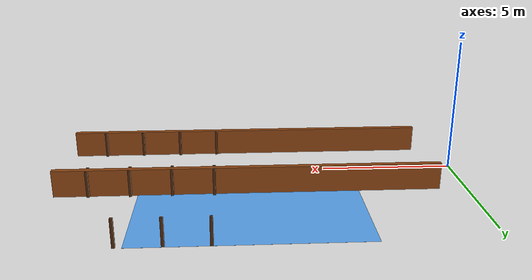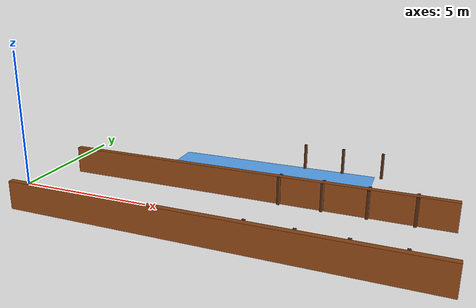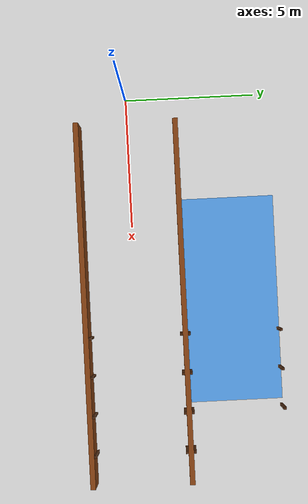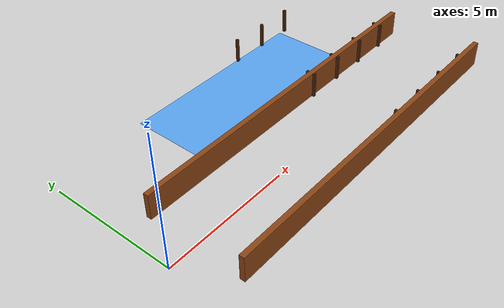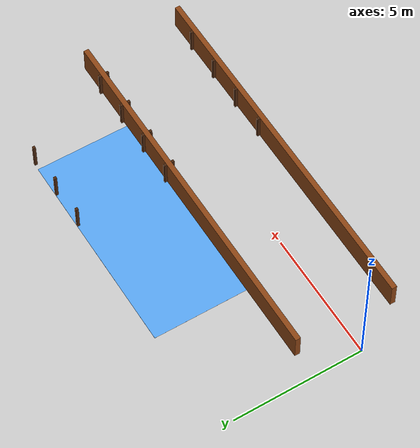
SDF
<sdf version="1.6">
 <world name="terrain_world">
  <model name="lane_wall_0">
   <static>true</static>
   <pose>8.0000 -1.9000 0.5000 0.00000 0.00000 0.00000</pose>
   <link name="link">
    <collision name="col"><geometry><box><size>14.0000 0.2000 1.0000</size></box></geometry></collision>
    <visual name="vis">
     <geometry><box><size>14.0000 0.2000 1.0000</size></box></geometry>
     <material><ambient>0.55 0.27 0.08 1</ambient><diffuse>0.55 0.27 0.08 1</diffuse></material>
    </visual>
   </link>
  </model>
  <model name="lane_wall_1">
   <static>true</static>
   <pose>8.0000 1.9000 0.5000 0.00000 0.00000 0.00000</pose>
   <link name="link">
    <collision name="col"><geometry><box><size>14.0000 0.2000 1.0000</size></box></geometry></collision>
    <visual name="vis">
     <geometry><box><size>14.0000 0.2000 1.0000</size></box></geometry>
     <material><ambient>0.55 0.27 0.08 1</ambient><diffuse>0.55 0.27 0.08 1</diffuse></material>
    </visual>
   </link>
  </model>
  <model name="lane0_rib_l5">
   <static>true</static>
   <pose>9.2500 1.7500 0.5000 0.00000 0.00000 0.00000</pose>
   <link name="link">
    <collision name="col"><geometry><box><size>0.1000 0.1000 1.0000</size></box></geometry></collision>
    <visual name="vis">
     <geometry><box><size>0.1000 0.1000 1.0000</size></box></geometry>
     <material><ambient>0.30 0.15 0.05 1</ambient><diffuse>0.30 0.15 0.05 1</diffuse></material>
    </visual>
   </link>
  </model>
  <model name="lane0_rib_l6">
   <static>true</static>
   <pose>10.7500 1.7500 0.5000 0.00000 0.00000 0.00000</pose>
   <link name="link">
    <collision name="col"><geometry><box><size>0.1000 0.1000 1.0000</size></box></geometry></collision>
    <visual name="vis">
     <geometry><box><size>0.1000 0.1000 1.0000</size></box></geometry>
     <material><ambient>0.30 0.15 0.05 1</ambient><diffuse>0.30 0.15 0.05 1</diffuse></material>
    </visual>
   </link>
  </model>
  <model name="lane0_rib_l7">
   <static>true</static>
   <pose>12.2500 1.7500 0.5000 0.00000 0.00000 0.00000</pose>
   <link name="link">
    <collision name="col"><geometry><box><size>0.1000 0.1000 1.0000</size></box></geometry></collision>
    <visual name="vis">
     <geometry><box><size>0.1000 0.1000 1.0000</size></box></geometry>
     <material><ambient>0.30 0.15 0.05 1</ambient><diffuse>0.30 0.15 0.05 1</diffuse></material>
    </visual>
   </link>
  </model>
  <model name="lane0_rib_l8">
   <static>true</static>
   <pose>13.7500 1.7500 0.5000 0.00000 0.00000 0.00000</pose>
   <link name="link">
    <collision name="col"><geometry><box><size>0.1000 0.1000 1.0000</size></box></geometry></collision>
    <visual name="vis">
     <geometry><box><size>0.1000 0.1000 1.0000</size></box></geometry>
     <material><ambient>0.30 0.15 0.05 1</ambient><diffuse>0.30 0.15 0.05 1</diffuse></material>
    </visual>
   </link>
  </model>
  <model name="lane0_rib_r5">
   <static>true</static>
   <pose>9.2500 -1.7500 0.5000 0.00000 0.00000 0.00000</pose>
   <link name="link">
    <collision name="col"><geometry><box><size>0.1000 0.1000 1.0000</size></box></geometry></collision>
    <visual name="vis">
     <geometry><box><size>0.1000 0.1000 1.0000</size></box></geometry>
     <material><ambient>0.30 0.15 0.05 1</ambient><diffuse>0.30 0.15 0.05 1</diffuse></material>
    </visual>
   </link>
  </model>
  <model name="lane0_rib_r6">
   <static>true</static>
   <pose>10.7500 -1.7500 0.5000 0.00000 0.00000 0.00000</pose>
   <link name="link">
    <collision name="col"><geometry><box><size>0.1000 0.1000 1.0000</size></box></geometry></collision>
    <visual name="vis">
     <geometry><box><size>0.1000 0.1000 1.0000</size></box></geometry>
     <material><ambient>0.30 0.15 0.05 1</ambient><diffuse>0.30 0.15 0.05 1</diffuse></material>
    </visual>
   </link>
  </model>
  <model name="lane0_rib_r7">
   <static>true</static>
   <pose>12.2500 -1.7500 0.5000 0.00000 0.00000 0.00000</pose>
   <link name="link">
    <collision name="col"><geometry><box><size>0.1000 0.1000 1.0000</size></box></geometry></collision>
    <visual name="vis">
     <geometry><box><size>0.1000 0.1000 1.0000</size></box></geometry>
     <material><ambient>0.30 0.15 0.05 1</ambient><diffuse>0.30 0.15 0.05 1</diffuse></material>
    </visual>
   </link>
  </model>
  <model name="lane0_rib_r8">
   <static>true</static>
   <pose>13.7500 -1.7500 0.5000 0.00000 0.00000 0.00000</pose>
   <link name="link">
    <collision name="col"><geometry><box><size>0.1000 0.1000 1.0000</size></box></geometry></collision>
    <visual name="vis">
     <geometry><box><size>0.1000 0.1000 1.0000</size></box></geometry>
     <material><ambient>0.30 0.15 0.05 1</ambient><diffuse>0.30 0.15 0.05 1</diffuse></material>
    </visual>
   </link>
  </model>
  <model name="lane1_rib_l5">
   <static>true</static>
   <pose>9.2500 5.5500 0.5000 0.00000 0.00000 0.00000</pose>
   <link name="link">
    <collision name="col"><geometry><box><size>0.1000 0.1000 1.0000</size></box></geometry></collision>
    <visual name="vis">
     <geometry><box><size>0.1000 0.1000 1.0000</size></box></geometry>
     <material><ambient>0.30 0.15 0.05 1</ambient><diffuse>0.30 0.15 0.05 1</diffuse></material>
    </visual>
   </link>
  </model>
  <model name="lane1_rib_l6">
   <static>true</static>
   <pose>10.7500 5.5500 0.5000 0.00000 0.00000 0.00000</pose>
   <link name="link">
    <collision name="col"><geometry><box><size>0.1000 0.1000 1.0000</size></box></geometry></collision>
    <visual name="vis">
     <geometry><box><size>0.1000 0.1000 1.0000</size></box></geometry>
     <material><ambient>0.30 0.15 0.05 1</ambient><diffuse>0.30 0.15 0.05 1</diffuse></material>
    </visual>
   </link>
  </model>
  <model name="lane1_rib_l7">
   <static>true</static>
   <pose>12.2500 5.5500 0.5000 0.00000 0.00000 0.00000</pose>
   <link name="link">
    <collision name="col"><geometry><box><size>0.1000 0.1000 1.0000</size></box></geometry></collision>
    <visual name="vis">
     <geometry><box><size>0.1000 0.1000 1.0000</size></box></geometry>
     <material><ambient>0.30 0.15 0.05 1</ambient><diffuse>0.30 0.15 0.05 1</diffuse></material>
    </visual>
   </link>
  </model>
  <model name="lane1_rib_r5">
   <static>true</static>
   <pose>9.2500 2.0500 0.5000 0.00000 0.00000 0.00000</pose>
   <link name="link">
    <collision name="col"><geometry><box><size>0.1000 0.1000 1.0000</size></box></geometry></collision>
    <visual name="vis">
     <geometry><box><size>0.1000 0.1000 1.0000</size></box></geometry>
     <material><ambient>0.30 0.15 0.05 1</ambient><diffuse>0.30 0.15 0.05 1</diffuse></material>
    </visual>
   </link>
  </model>
  <model name="lane1_rib_r6">
   <static>true</static>
   <pose>10.7500 2.0500 0.5000 0.00000 0.00000 0.00000</pose>
   <link name="link">
    <collision name="col"><geometry><box><size>0.1000 0.1000 1.0000</size></box></geometry></collision>
    <visual name="vis">
     <geometry><box><size>0.1000 0.1000 1.0000</size></box></geometry>
     <material><ambient>0.30 0.15 0.05 1</ambient><diffuse>0.30 0.15 0.05 1</diffuse></material>
    </visual>
   </link>
  </model>
  <model name="lane1_rib_r7">
   <static>true</static>
   <pose>12.2500 2.0500 0.5000 0.00000 0.00000 0.00000</pose>
   <link name="link">
    <collision name="col"><geometry><box><size>0.1000 0.1000 1.0000</size></box></geometry></collision>
    <visual name="vis">
     <geometry><box><size>0.1000 0.1000 1.0000</size></box></geometry>
     <material><ambient>0.30 0.15 0.05 1</ambient><diffuse>0.30 0.15 0.05 1</diffuse></material>
    </visual>
   </link>
  </model>
  <model name="lane1_rib_r8">
   <static>true</static>
   <pose>13.7500 2.0500 0.5000 0.00000 0.00000 0.00000</pose>
   <link name="link">
    <collision name="col"><geometry><box><size>0.1000 0.1000 1.0000</size></box></geometry></collision>
    <visual name="vis">
     <geometry><box><size>0.1000 0.1000 1.0000</size></box></geometry>
     <material><ambient>0.30 0.15 0.05 1</ambient><diffuse>0.30 0.15 0.05 1</diffuse></material>
    </visual>
   </link>
  </model>
  <model name="lane1_ice">
   <static>true</static>
   <pose>8.0000 3.8000 0.0010 0.00000 0.00000 0.00000</pose>
   <link name="link">
    <collision name="col">
     <geometry><box><size>8.0000 3.6000 0.0020</size></box></geometry>
     <surface><friction><ode><mu>0.1</mu><mu2>0.1</mu2></ode></friction></surface>
    </collision>
    <visual name="vis">
     <geometry><box><size>8.0000 3.6000 0.0020</size></box></geometry>
     <material><ambient>0.35 0.65 0.95 1</ambient><diffuse>0.35 0.65 0.95 1</diffuse></material>
    </visual>
   </link>
  </model>
 </world>
</sdf>
